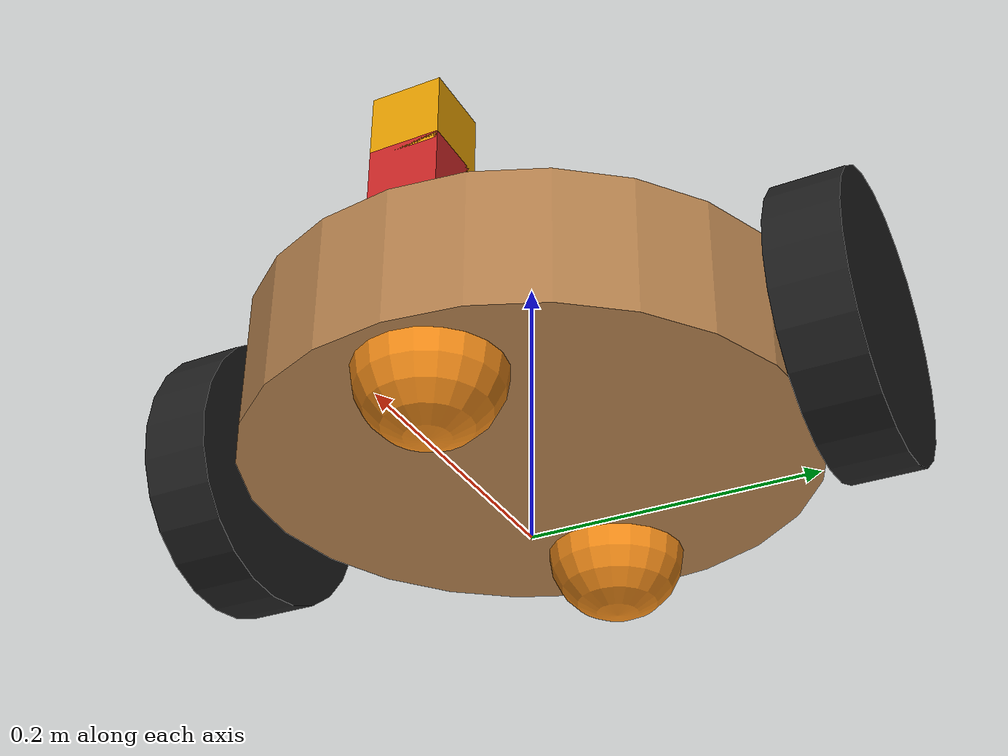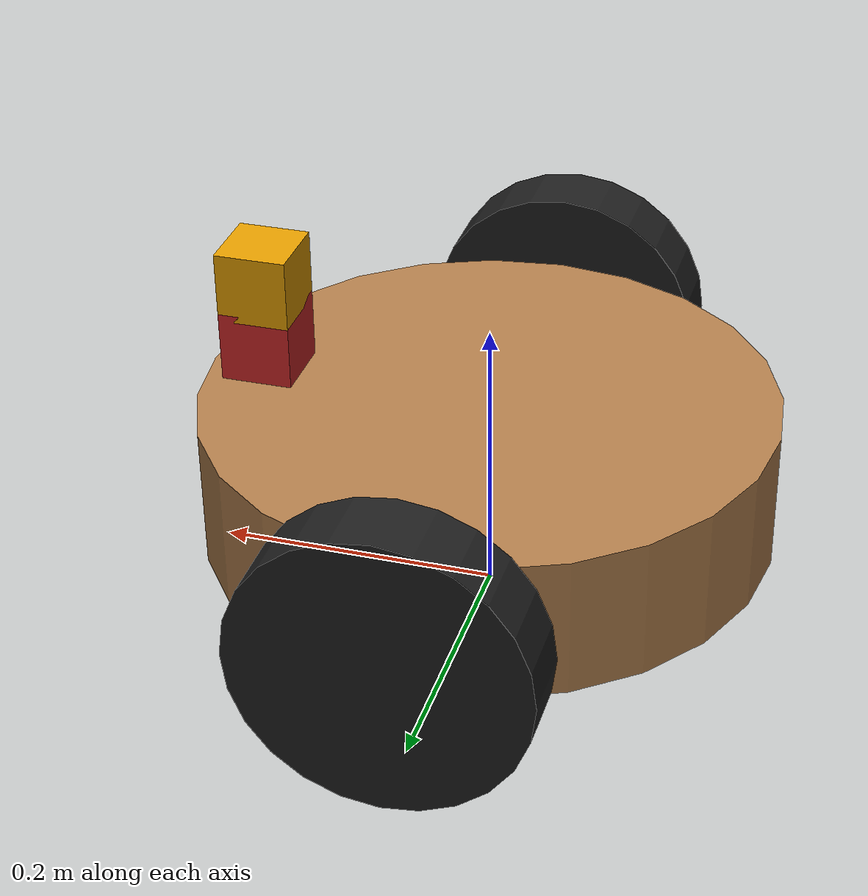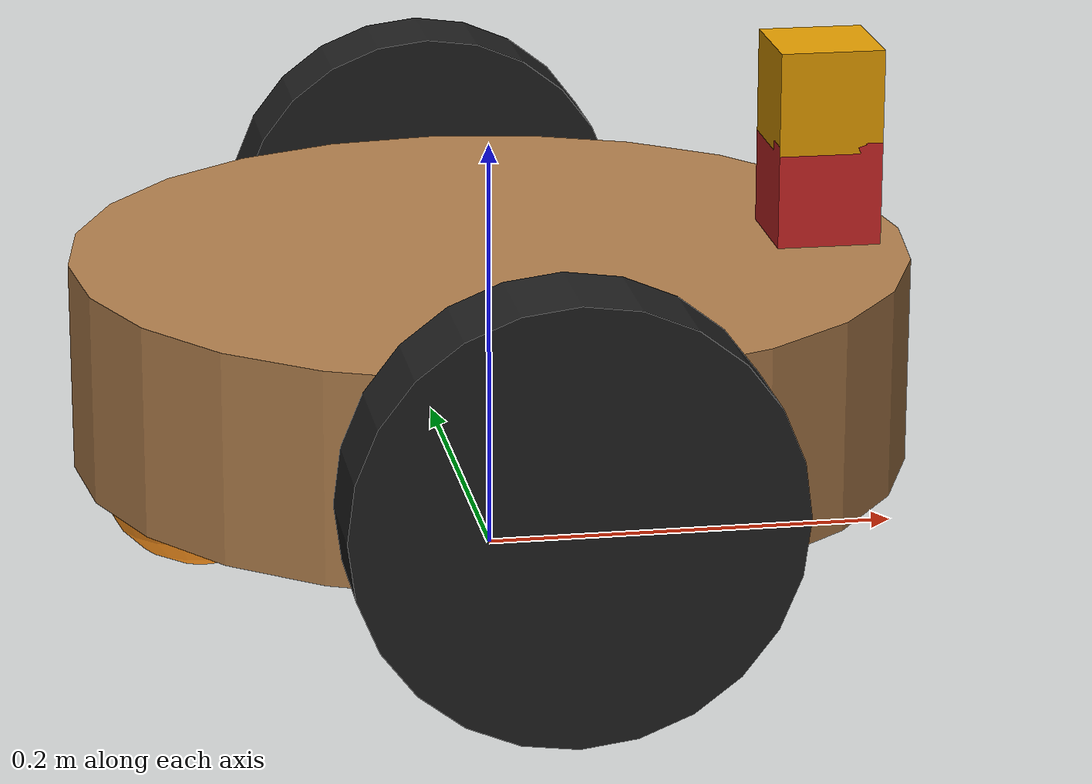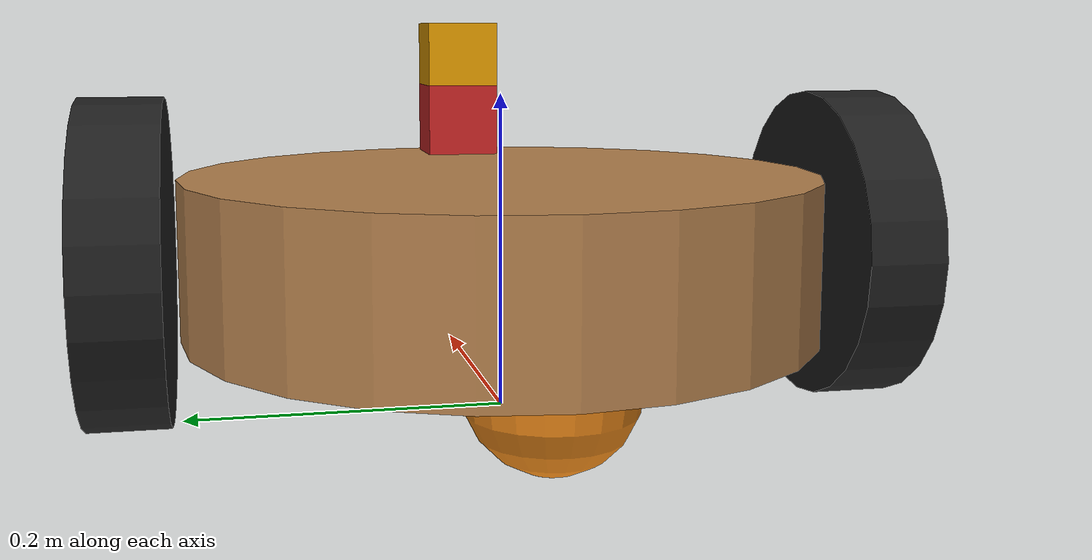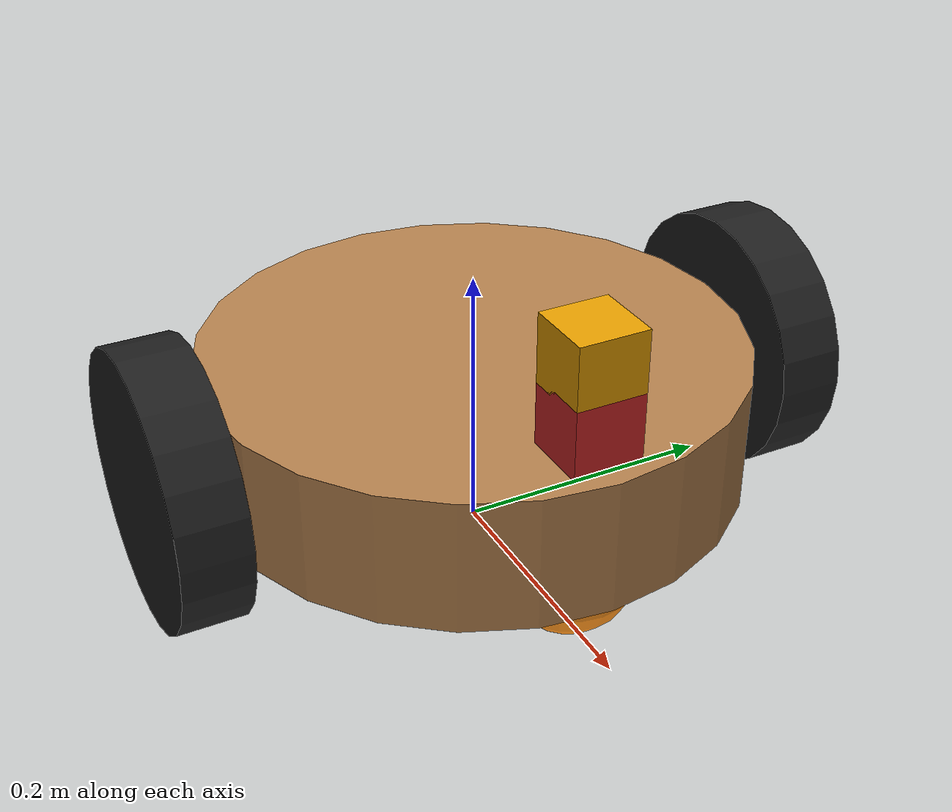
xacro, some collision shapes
<?xml version="1.0"?>
<robot name="indoor_bot" xmlns:xacro="http://www.ros.org/wiki/xacro">
  <xacro:include filename="$(find indoor_bot)/models/urdf/indoor_bot_ros2.gazebo" />

  <link name="base_footprint" />

  <joint name="base_footprint_joint" type="fixed">
    <origin xyz="0 0 0" rpy="0 0 0" />
    <parent link="base_footprint" />
    <child link="robot_footprint" />
  </joint>

  <link name="robot_footprint" />

  <joint name="robot_footprint_joint" type="fixed">
    <origin xyz="0 0 0.1" rpy="0 0 0" />
    <parent link="robot_footprint" />
    <child link="chassis" />
  </joint>

  <link name="chassis">
    <inertial>
      <mass value="5.0" />
      <origin xyz="0 0 0" rpy="0 0 0" />
      <inertia ixx="0.1" ixy="0.0" ixz="0.0" iyy="0.1" iyz="0.0" izz="0.1" />
    </inertial>

    <collision name="chassis_collision">
      <origin xyz="0 0 0" rpy="0 0 0" />
      <geometry>
        <cylinder radius="0.2" length="0.1" />
      </geometry>
    </collision>

    <visual name="chassis_visual">
      <origin xyz="0 0 0" rpy="0 0 0" />
      <geometry>
        <cylinder radius="0.2" length="0.1" />
      </geometry>
    </visual>
  </link>

  <joint name="back_caster_joint" type="fixed">
    <parent link="chassis" />
    <child link="back_caster" />
    <origin xyz="-0.14 0 -0.05" rpy="0 0 0" />
  </joint>

  <link name="back_caster">
    <inertial>
      <mass value="0.5" />
      <origin xyz="0 0 0" rpy="0 0 0" />
      <inertia ixx="0.1" ixy="0.0" ixz="0.0" iyy="0.1" iyz="0.0" izz="0.1" />
    </inertial>

    <collision name="back_caster_collision">
      <origin xyz="0 0 0" rpy="0 0 0" />
      <geometry>
        <sphere radius="0.05" />
      </geometry>
    </collision>

    <visual name="back_caster_visual">
      <origin xyz="0 0 0" rpy="0 0 0" />
      <geometry>
        <sphere radius="0.05" />
      </geometry>
    </visual>
  </link>

  <joint name="front_caster_joint" type="fixed">
    <parent link="chassis" />
    <child link="front_caster" />
    <origin xyz="0.14 0 -0.05" rpy="0 0 0" />
  </joint>

  <link name="front_caster">
    <inertial>
      <mass value="0.5" />
      <origin xyz="0 0 0" rpy="0 0 0" />
      <inertia ixx="0.1" ixy="0.0" ixz="0.0" iyy="0.1" iyz="0.0" izz="0.1" />
    </inertial>

    <collision name="front_caster_collision">
      <origin xyz="0 0 0" rpy="0 0 0" />
      <geometry>
        <sphere radius="0.05" />
      </geometry>
    </collision>

    <visual name="front_caster_visual">
      <origin xyz="0 0 0" rpy="0 0 0" />
      <geometry>
        <sphere radius="0.05" />
      </geometry>
    </visual>
  </link>

  <joint name="left_wheel_hinge" type="continuous">
    <origin xyz="0 0.23 0" rpy="0 0 0" />
    <parent link="chassis" />
    <child link="left_wheel" />
    <axis xyz="0 1 0" />
    <limit effort="10000" velocity="1000" />
    <dynamics damping="0.05" friction="0.0" />
  </joint>

  <link name="left_wheel">
    <inertial>
      <origin xyz="0 0 0" rpy="1.57079632679 0 0" />
      <mass value="0.8" />
      <inertia ixx="0.1" ixy="0.0" ixz="0.0" iyy="0.1" iyz="0.0" izz="0.1" />
    </inertial>

    <visual name="left_wheel_visual">
      <origin xyz="0 0 0" rpy="1.57079632679 0 0" />
      <geometry>
        <cylinder radius="0.1" length="0.05" />
      </geometry>
    </visual>

    <collision name="left_wheel_collision">
      <origin xyz="0 0 0" rpy="1.57079632679 0 0" />
      <geometry>
        <cylinder radius="0.1" length="0.05" />
      </geometry>
    </collision>
  </link>

  <joint name="right_wheel_hinge" type="continuous">
    <origin xyz="0 -0.23 0" rpy="0 0 0" />
    <parent link="chassis" />
    <child link="right_wheel" />
    <axis xyz="0 1 0" />
    <limit effort="10000" velocity="1000" />
    <dynamics damping="0.05" friction="0.0" />
  </joint>

  <link name="right_wheel">
    <inertial>
      <origin xyz="0 0 0" rpy="1.57079632679 0 0" />
      <mass value="0.8" />
      <inertia ixx="0.1" ixy="0.0" ixz="0.0" iyy="0.1" iyz="0.0" izz="0.1" />
    </inertial>

    <visual name="right_wheel_visual">
      <origin xyz="0 0 0" rpy="1.57079632679 0 0" />
      <geometry>
        <cylinder radius="0.1" length="0.05" />
      </geometry>
    </visual>

    <collision name="right_wheel_collision">
      <origin xyz="0 0 0" rpy="1.57079632679 0 0" />
      <geometry>
        <cylinder radius="0.1" length="0.05" />
      </geometry>
    </collision>
  </link>

  <joint name="camera_joint" type="fixed">
    <parent link="chassis" />
    <child link="camera" />
    <origin xyz="0.16 0 0.05" rpy="0 0 0" />
  </joint>

  <link name="camera">
    <inertial>
      <origin xyz="0 0 0.025" rpy="0 0 0" />
      <mass value="0.1" />
      <inertia ixx="1e-6" ixy="0.0" ixz="0.0" iyy="1e-6" iyz="0.0" izz="1e-6" />
    </inertial>

    <visual name="camera_visual">
      <origin xyz="0 0 0.025" rpy="0 0 0" />
      <geometry>
        <box size="0.05 0.05 0.05" />
      </geometry>
    </visual>

    <collision name="camera_collision">
      <origin xyz="0 0 0.025" rpy="0 0 0" />
      <geometry>
        <box size="0.05 0.05 0.05" />
      </geometry>
    </collision>
  </link>

  <joint name="hokuyo_joint" type="fixed">
    <parent link="camera" />
    <child link="hokuyo" />
    <origin xyz="0 0 0.07" rpy="0 0 0" />
  </joint>

  <link name="hokuyo">
    <inertial>
      <origin xyz="0 0 0" rpy="0 0 0" />
      <mass value="1e-5" />
      <inertia ixx="1e-6" ixy="0.0" ixz="0.0" iyy="1e-6" iyz="0.0" izz="1e-6" />
    </inertial>

    <visual name="hokuyo_visual">
      <origin xyz="0 0 0" rpy="0 0 0" />
      <geometry>
        <mesh filename="package://indoor_bot/models/hokuyo/meshes/hokuyo.dae" />
      </geometry>
    </visual>

    <collision name="hokuyo_collision">
      <origin xyz="0 0 0" rpy="0 0 0" />
      <geometry>
        <box size="0.05 0.05 0.05" />
      </geometry>
    </collision>
  </link>

  <joint name="imu_joint" type="fixed">
    <parent link="chassis" />
    <child link="imu_link" />
    <origin xyz="0 0 0" rpy="0 0 0" />
  </joint>

  <link name="imu_link" />
</robot>
